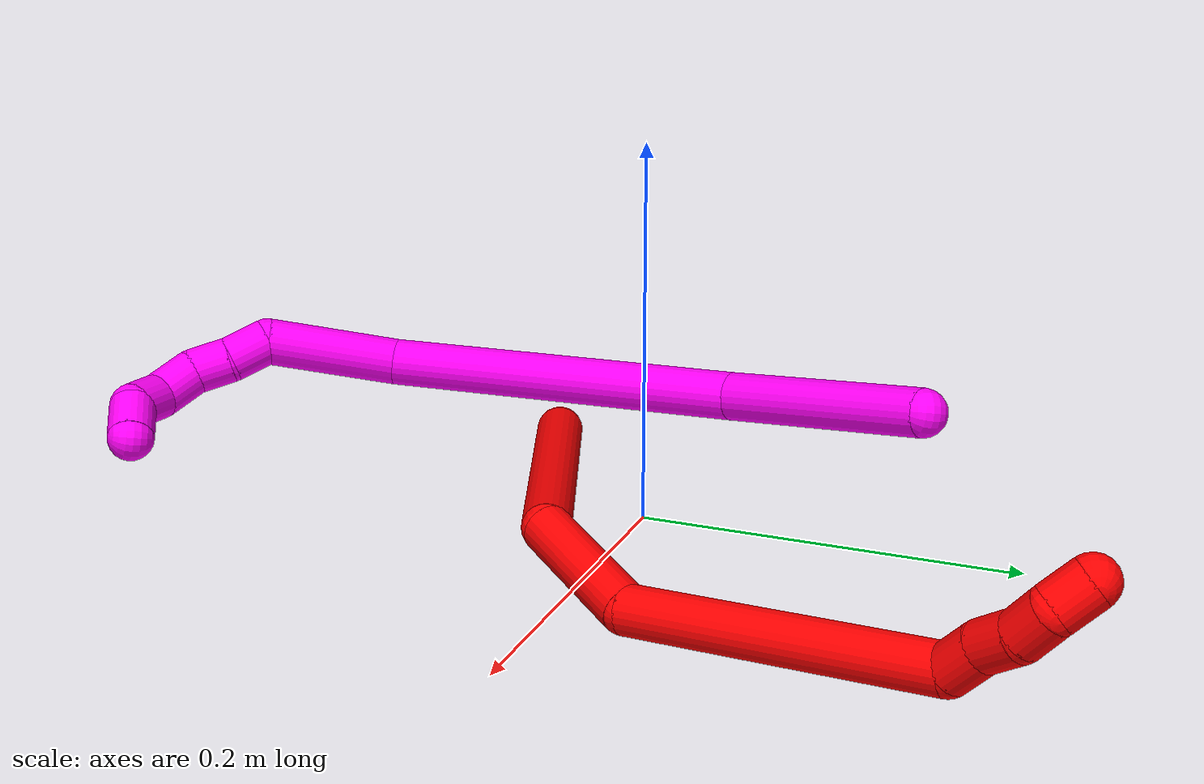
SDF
<sdf version="1.7">
 <world name="default">
  <model name="photoneo_s_sensor">
   <static>1</static>
   <pose>0 0 2 1.57079 1.57079 3.14159</pose>
   <link name="link">
    <inertial><mass>0.1</mass></inertial>
    <sensor name="sensor" type="depth">
     <update_rate>30</update_rate>
     <camera>
      <horizontal_fov>1.22</horizontal_fov>
      <image><width>1920</width><height>1200</height><format>B8G8R8</format></image>
      <clip><near>0.1</near><far>4</far></clip>
      <depth_camera><output>points</output></depth_camera>
     </camera>
     <plugin name="camera_plugin" filename="libgazebo_ros_depth_camera.so">
      <baseline>0.2</baseline>
      <alwaysOn>1</alwaysOn>
      <updateRate>0.0</updateRate>
      <cameraName>camera_ir</cameraName>
      <imageTopicName>/camera/color/image_raw</imageTopicName>
      <cameraInfoTopicName>/camera/color/camera_info</cameraInfoTopicName>
      <depthImageTopicName>/camera/depth/image_raw</depthImageTopicName>
      <depthImageCameraInfoTopicName>/camera/depth/camera_info</depthImageCameraInfoTopicName>
      <pointCloudTopicName>/camera/depth/points</pointCloudTopicName>
      <frameName>fr_optical</frameName>
      <pointCloudCutoff>0.1</pointCloudCutoff>
      <pointCloudCutoffMax>2.0</pointCloudCutoffMax>
      <distortionK1>0</distortionK1>
      <distortionK2>0</distortionK2>
      <distortionK3>0</distortionK3>
      <distortionT1>0</distortionT1>
      <distortionT2>0</distortionT2>
      <CxPrime>0</CxPrime>
      <Cx>0</Cx>
      <Cy>0</Cy>
      <focalLength>0</focalLength>
      <hackBaseline>0</hackBaseline>
     </plugin>
    </sensor>
   </link>
  </model>
  <model name="bin">
   <static>1</static>
   <link name="bottom">
    <collision name="collision-bottom">
     <pose>0 0 -0.01 0 -0 0</pose>
     <geometry><box><size>0.8 0.6 0.02</size></box></geometry>
     <surface>
      <friction><ode><mu>100</mu><mu2>100</mu2></ode></friction>
      <contact><collide_bitmask>65535</collide_bitmask></contact>
     </surface>
    </collision>
   </link>
   <link name="west_wall">
    <collision name="collision-west_wall">
     <pose>-0.41 0 0.1 0 -0 0</pose>
     <geometry><box><size>0.02 0.6 0.2</size></box></geometry>
     <surface>
      <friction><ode><mu>100</mu><mu2>100</mu2></ode></friction>
      <contact><collide_bitmask>65535</collide_bitmask></contact>
     </surface>
    </collision>
   </link>
   <link name="east_wall">
    <collision name="collision-east_wall">
     <pose>0.41 0 0.1 0 -0 0</pose>
     <geometry><box><size>0.02 0.6 0.2</size></box></geometry>
     <surface>
      <friction><ode><mu>100</mu><mu2>100</mu2></ode></friction>
      <contact><collide_bitmask>65535</collide_bitmask></contact>
     </surface>
    </collision>
   </link>
   <link name="south_wall">
    <collision name="collision-south_wall">
     <pose>0 -0.31 0.1 0 -0 0</pose>
     <geometry><box><size>0.8 0.02 0.2</size></box></geometry>
     <surface>
      <friction><ode><mu>100</mu><mu2>100</mu2></ode></friction>
      <contact><collide_bitmask>65535</collide_bitmask></contact>
     </surface>
    </collision>
   </link>
   <link name="north_wall">
    <collision name="collision-north_wall">
     <pose>0 0.31 0.1 0 -0 0</pose>
     <geometry><box><size>0.8 0.02 0.2</size></box></geometry>
     <surface>
      <friction><ode><mu>100</mu><mu2>100</mu2></ode></friction>
      <contact><collide_bitmask>65535</collide_bitmask></contact>
     </surface>
    </collision>
   </link>
  </model>
  <model name="2">
   <static>0</static>
   <link name="2">
    <collision name="collision-cylinder-e_1_1_4">
     <pose>0.005272 -0.011925 -0.087458 3.00608 0.059652 0.828425</pose>
     <geometry><cylinder><radius>0.0125</radius><length>0.176849</length></cylinder></geometry>
     <surface>
      <friction><ode><mu>1.16</mu><mu2>1.16</mu2><slip1>0</slip1><slip2>0</slip2></ode></friction>
      <contact><ode><kp>1e+06</kp><kd>1</kd><max_vel>0</max_vel><min_depth>0.001</min_depth></ode></contact>
     </surface>
    </collision>
    <visual name="visual-cylinder-e_1_1_4">
     <pose>0.005272 -0.011925 -0.087458 3.00608 0.059652 0.828425</pose>
     <geometry><cylinder><radius>0.0125</radius><length>0.176849</length></cylinder></geometry>
     <material><ambient>1 0 0 1</ambient></material>
    </visual>
    <collision name="collision-cylinder-e_2_4_5">
     <pose>0.017748 -0.006672 -0.207553 -2.65711 0.192927 -0.746506</pose>
     <geometry><cylinder><radius>0.0125</radius><length>0.075157</length></cylinder></geometry>
     <surface>
      <friction><ode><mu>1.16</mu><mu2>1.16</mu2><slip1>0</slip1><slip2>0</slip2></ode></friction>
      <contact><ode><kp>1e+06</kp><kd>1</kd><max_vel>0</max_vel><min_depth>0.001</min_depth></ode></contact>
     </surface>
    </collision>
    <visual name="visual-cylinder-e_2_4_5">
     <pose>0.017748 -0.006672 -0.207553 -2.65711 0.192927 -0.746506</pose>
     <geometry><cylinder><radius>0.0125</radius><length>0.075157</length></cylinder></geometry>
     <material><ambient>1 0 0 1</ambient></material>
    </visual>
    <collision name="collision-cylinder-e_3_5_6">
     <pose>0.074787 0.055445 -0.286913 -2.37565 0.655372 -1.40178</pose>
     <geometry><cylinder><radius>0.0125</radius><length>0.163536</length></cylinder></geometry>
     <surface>
      <friction><ode><mu>1.16</mu><mu2>1.16</mu2><slip1>0</slip1><slip2>0</slip2></ode></friction>
      <contact><ode><kp>1e+06</kp><kd>1</kd><max_vel>0</max_vel><min_depth>0.001</min_depth></ode></contact>
     </surface>
    </collision>
    <visual name="visual-cylinder-e_3_5_6">
     <pose>0.074787 0.055445 -0.286913 -2.37565 0.655372 -1.40178</pose>
     <geometry><cylinder><radius>0.0125</radius><length>0.163536</length></cylinder></geometry>
     <material><ambient>1 0 0 1</ambient></material>
    </visual>
    <collision name="collision-cylinder-e_4_6_7">
     <pose>0.134712 0.099808 -0.338112 3.01357 1.15025 2.94447</pose>
     <geometry><cylinder><radius>0.0125</radius><length>0.022109</length></cylinder></geometry>
     <surface>
      <friction><ode><mu>1.16</mu><mu2>1.16</mu2><slip1>0</slip1><slip2>0</slip2></ode></friction>
      <contact><ode><kp>1e+06</kp><kd>1</kd><max_vel>0</max_vel><min_depth>0.001</min_depth></ode></contact>
     </surface>
    </collision>
    <visual name="visual-cylinder-e_4_6_7">
     <pose>0.134712 0.099808 -0.338112 3.01357 1.15025 2.94447</pose>
     <geometry><cylinder><radius>0.0125</radius><length>0.022109</length></cylinder></geometry>
     <material><ambient>1 0 0 1</ambient></material>
    </visual>
    <collision name="collision-cylinder-e_5_7_8">
     <pose>0.153432 0.100011 -0.349155 -3.02353 0.916863 -2.90321</pose>
     <geometry><cylinder><radius>0.0125</radius><length>0.021743</length></cylinder></geometry>
     <surface>
      <friction><ode><mu>1.16</mu><mu2>1.16</mu2><slip1>0</slip1><slip2>0</slip2></ode></friction>
      <contact><ode><kp>1e+06</kp><kd>1</kd><max_vel>0</max_vel><min_depth>0.001</min_depth></ode></contact>
     </surface>
    </collision>
    <visual name="visual-cylinder-e_5_7_8">
     <pose>0.153432 0.100011 -0.349155 -3.02353 0.916863 -2.90321</pose>
     <geometry><cylinder><radius>0.0125</radius><length>0.021743</length></cylinder></geometry>
     <material><ambient>1 0 0 1</ambient></material>
    </visual>
    <collision name="collision-cylinder-e_6_8_9">
     <pose>0.171592 0.09986 -0.359514 2.90105 1.18199 2.78519</pose>
     <geometry><cylinder><radius>0.0125</radius><length>0.0206</length></cylinder></geometry>
     <surface>
      <friction><ode><mu>1.16</mu><mu2>1.16</mu2><slip1>0</slip1><slip2>0</slip2></ode></friction>
      <contact><ode><kp>1e+06</kp><kd>1</kd><max_vel>0</max_vel><min_depth>0.001</min_depth></ode></contact>
     </surface>
    </collision>
    <visual name="visual-cylinder-e_6_8_9">
     <pose>0.171592 0.09986 -0.359514 2.90105 1.18199 2.78519</pose>
     <geometry><cylinder><radius>0.0125</radius><length>0.0206</length></cylinder></geometry>
     <material><ambient>1 0 0 1</ambient></material>
    </visual>
    <collision name="collision-cylinder-e_7_9_2">
     <pose>0.190834 0.101162 -0.362426 -1.19504 1.32856 -0.979119</pose>
     <geometry><cylinder><radius>0.0125</radius><length>0.020006</length></cylinder></geometry>
     <surface>
      <friction><ode><mu>1.16</mu><mu2>1.16</mu2><slip1>0</slip1><slip2>0</slip2></ode></friction>
      <contact><ode><kp>1e+06</kp><kd>1</kd><max_vel>0</max_vel><min_depth>0.001</min_depth></ode></contact>
     </surface>
    </collision>
    <visual name="visual-cylinder-e_7_9_2">
     <pose>0.190834 0.101162 -0.362426 -1.19504 1.32856 -0.979119</pose>
     <geometry><cylinder><radius>0.0125</radius><length>0.020006</length></cylinder></geometry>
     <material><ambient>1 0 0 1</ambient></material>
    </visual>
    <collision name="collision-sphere-2">
     <pose>0.200545 0.103394 -0.361545 0 -0 0</pose>
     <geometry><sphere><radius>0.0125</radius></sphere></geometry>
     <surface>
      <friction><ode><mu>1.16</mu><mu2>1.16</mu2><slip1>0</slip1><slip2>0</slip2></ode></friction>
      <contact><ode><kp>1e+06</kp><kd>1</kd><max_vel>0</max_vel><min_depth>0.001</min_depth></ode></contact>
     </surface>
    </collision>
    <visual name="visual-sphere-2">
     <pose>0.200545 0.103394 -0.361545 0 -0 0</pose>
     <geometry><sphere><radius>0.0125</radius></sphere></geometry>
     <material><ambient>1 0 0 1</ambient></material>
    </visual>
    <collision name="collision-sphere-9">
     <pose>0.181123 0.09893 -0.363307 0 -0 0</pose>
     <geometry><sphere><radius>0.0125</radius></sphere></geometry>
     <surface>
      <friction><ode><mu>1.16</mu><mu2>1.16</mu2><slip1>0</slip1><slip2>0</slip2></ode></friction>
      <contact><ode><kp>1e+06</kp><kd>1</kd><max_vel>0</max_vel><min_depth>0.001</min_depth></ode></contact>
     </surface>
    </collision>
    <visual name="visual-sphere-9">
     <pose>0.181123 0.09893 -0.363307 0 -0 0</pose>
     <geometry><sphere><radius>0.0125</radius></sphere></geometry>
     <material><ambient>1 0 0 1</ambient></material>
    </visual>
    <collision name="collision-sphere-4">
     <pose>0.010543 -0.02385 -0.174916 0 -0 0</pose>
     <geometry><sphere><radius>0.0125</radius></sphere></geometry>
     <surface>
      <friction><ode><mu>1.16</mu><mu2>1.16</mu2><slip1>0</slip1><slip2>0</slip2></ode></friction>
      <contact><ode><kp>1e+06</kp><kd>1</kd><max_vel>0</max_vel><min_depth>0.001</min_depth></ode></contact>
     </surface>
    </collision>
    <visual name="visual-sphere-4">
     <pose>0.010543 -0.02385 -0.174916 0 -0 0</pose>
     <geometry><sphere><radius>0.0125</radius></sphere></geometry>
     <material><ambient>1 0 0 1</ambient></material>
    </visual>
    <collision name="collision-sphere-1">
     <geometry><sphere><radius>0.0125</radius></sphere></geometry>
     <surface>
      <friction><ode><mu>1.16</mu><mu2>1.16</mu2><slip1>0</slip1><slip2>0</slip2></ode></friction>
      <contact><ode><kp>1e+06</kp><kd>1</kd><max_vel>0</max_vel><min_depth>0.001</min_depth></ode></contact>
     </surface>
    </collision>
    <visual name="visual-sphere-1">
     <geometry><sphere><radius>0.0125</radius></sphere></geometry>
     <material><ambient>1 0 0 1</ambient></material>
    </visual>
    <collision name="collision-sphere-8">
     <pose>0.162061 0.10079 -0.355722 0 -0 0</pose>
     <geometry><sphere><radius>0.0125</radius></sphere></geometry>
     <surface>
      <friction><ode><mu>1.16</mu><mu2>1.16</mu2><slip1>0</slip1><slip2>0</slip2></ode></friction>
      <contact><ode><kp>1e+06</kp><kd>1</kd><max_vel>0</max_vel><min_depth>0.001</min_depth></ode></contact>
     </surface>
    </collision>
    <visual name="visual-sphere-8">
     <pose>0.162061 0.10079 -0.355722 0 -0 0</pose>
     <geometry><sphere><radius>0.0125</radius></sphere></geometry>
     <material><ambient>1 0 0 1</ambient></material>
    </visual>
    <collision name="collision-sphere-5">
     <pose>0.024953 0.010505 -0.24019 0 -0 0</pose>
     <geometry><sphere><radius>0.0125</radius></sphere></geometry>
     <surface>
      <friction><ode><mu>1.16</mu><mu2>1.16</mu2><slip1>0</slip1><slip2>0</slip2></ode></friction>
      <contact><ode><kp>1e+06</kp><kd>1</kd><max_vel>0</max_vel><min_depth>0.001</min_depth></ode></contact>
     </surface>
    </collision>
    <visual name="visual-sphere-5">
     <pose>0.024953 0.010505 -0.24019 0 -0 0</pose>
     <geometry><sphere><radius>0.0125</radius></sphere></geometry>
     <material><ambient>1 0 0 1</ambient></material>
    </visual>
    <collision name="collision-sphere-6">
     <pose>0.124621 0.100384 -0.333635 0 -0 0</pose>
     <geometry><sphere><radius>0.0125</radius></sphere></geometry>
     <surface>
      <friction><ode><mu>1.16</mu><mu2>1.16</mu2><slip1>0</slip1><slip2>0</slip2></ode></friction>
      <contact><ode><kp>1e+06</kp><kd>1</kd><max_vel>0</max_vel><min_depth>0.001</min_depth></ode></contact>
     </surface>
    </collision>
    <visual name="visual-sphere-6">
     <pose>0.124621 0.100384 -0.333635 0 -0 0</pose>
     <geometry><sphere><radius>0.0125</radius></sphere></geometry>
     <material><ambient>1 0 0 1</ambient></material>
    </visual>
    <collision name="collision-sphere-7">
     <pose>0.144803 0.099232 -0.342588 0 -0 0</pose>
     <geometry><sphere><radius>0.0125</radius></sphere></geometry>
     <surface>
      <friction><ode><mu>1.16</mu><mu2>1.16</mu2><slip1>0</slip1><slip2>0</slip2></ode></friction>
      <contact><ode><kp>1e+06</kp><kd>1</kd><max_vel>0</max_vel><min_depth>0.001</min_depth></ode></contact>
     </surface>
    </collision>
    <visual name="visual-sphere-7">
     <pose>0.144803 0.099232 -0.342588 0 -0 0</pose>
     <geometry><sphere><radius>0.0125</radius></sphere></geometry>
     <material><ambient>1 0 0 1</ambient></material>
    </visual>
    <inertial>
     <pose>0.056327 0.029838 -0.21542 0 -0 0</pose>
     <mass>0.5</mass>
     <inertia>
      <ixx>0.000435</ixx>
      <ixy>0</ixy>
      <ixz>0</ixz>
      <iyy>-0.000181</iyy>
      <iyz>0</iyz>
      <izz>-0.000454</izz>
     </inertia>
    </inertial>
   </link>
   <pose>-0.075734 -0.077548 0.012379 -1.48676 -0.864641 1.91791</pose>
  </model>
  <model name="10">
   <static>0</static>
   <link name="10">
    <collision name="collision-cylinder-e_1_1_4">
     <pose>0.014754 -0.046696 0.030594 0.990796 0.258379 0.140165</pose>
     <geometry><cylinder><radius>0.0125</radius><length>0.115484</length></cylinder></geometry>
     <surface>
      <friction><ode><mu>1.16</mu><mu2>1.16</mu2><slip1>0</slip1><slip2>0</slip2></ode></friction>
      <contact><ode><kp>1e+06</kp><kd>1</kd><max_vel>0</max_vel><min_depth>0.001</min_depth></ode></contact>
     </surface>
    </collision>
    <visual name="visual-cylinder-e_1_1_4">
     <pose>0.014754 -0.046696 0.030594 0.990796 0.258379 0.140165</pose>
     <geometry><cylinder><radius>0.0125</radius><length>0.115484</length></cylinder></geometry>
     <material><ambient>1 0 0.964706 1</ambient></material>
    </visual>
    <collision name="collision-cylinder-e_2_4_5">
     <pose>0.048337 -0.157789 0.134435 0.721194 0.190718 0.072104</pose>
     <geometry><cylinder><radius>0.0125</radius><length>0.198664</length></cylinder></geometry>
     <surface>
      <friction><ode><mu>1.16</mu><mu2>1.16</mu2><slip1>0</slip1><slip2>0</slip2></ode></friction>
      <contact><ode><kp>1e+06</kp><kd>1</kd><max_vel>0</max_vel><min_depth>0.001</min_depth></ode></contact>
     </surface>
    </collision>
    <visual name="visual-cylinder-e_2_4_5">
     <pose>0.048337 -0.157789 0.134435 0.721194 0.190718 0.072104</pose>
     <geometry><cylinder><radius>0.0125</radius><length>0.198664</length></cylinder></geometry>
     <material><ambient>1 0 0.964706 1</ambient></material>
    </visual>
    <collision name="collision-cylinder-e_3_5_6">
     <pose>0.066175 -0.227458 0.243276 0.14701 -0.027563 -0.00203</pose>
     <geometry><cylinder><radius>0.0125</radius><length>0.071992</length></cylinder></geometry>
     <surface>
      <friction><ode><mu>1.16</mu><mu2>1.16</mu2><slip1>0</slip1><slip2>0</slip2></ode></friction>
      <contact><ode><kp>1e+06</kp><kd>1</kd><max_vel>0</max_vel><min_depth>0.001</min_depth></ode></contact>
     </surface>
    </collision>
    <visual name="visual-cylinder-e_3_5_6">
     <pose>0.066175 -0.227458 0.243276 0.14701 -0.027563 -0.00203</pose>
     <geometry><cylinder><radius>0.0125</radius><length>0.071992</length></cylinder></geometry>
     <material><ambient>1 0 0.964706 1</ambient></material>
    </visual>
    <collision name="collision-cylinder-e_4_6_7">
     <pose>0.071094 -0.231878 0.288372 -0.089316 0.554725 -0.025444</pose>
     <geometry><cylinder><radius>0.0125</radius><length>0.022446</length></cylinder></geometry>
     <surface>
      <friction><ode><mu>1.16</mu><mu2>1.16</mu2><slip1>0</slip1><slip2>0</slip2></ode></friction>
      <contact><ode><kp>1e+06</kp><kd>1</kd><max_vel>0</max_vel><min_depth>0.001</min_depth></ode></contact>
     </surface>
    </collision>
    <visual name="visual-cylinder-e_4_6_7">
     <pose>0.071094 -0.231878 0.288372 -0.089316 0.554725 -0.025444</pose>
     <geometry><cylinder><radius>0.0125</radius><length>0.022446</length></cylinder></geometry>
     <material><ambient>1 0 0.964706 1</ambient></material>
    </visual>
    <collision name="collision-cylinder-e_5_7_8">
     <pose>0.081636 -0.231963 0.307284 0.099125 0.455333 0.022984</pose>
     <geometry><cylinder><radius>0.0125</radius><length>0.021058</length></cylinder></geometry>
     <surface>
      <friction><ode><mu>1.16</mu><mu2>1.16</mu2><slip1>0</slip1><slip2>0</slip2></ode></friction>
      <contact><ode><kp>1e+06</kp><kd>1</kd><max_vel>0</max_vel><min_depth>0.001</min_depth></ode></contact>
     </surface>
    </collision>
    <visual name="visual-cylinder-e_5_7_8">
     <pose>0.081636 -0.231963 0.307284 0.099125 0.455333 0.022984</pose>
     <geometry><cylinder><radius>0.0125</radius><length>0.021058</length></cylinder></geometry>
     <material><ambient>1 0 0.964706 1</ambient></material>
    </visual>
    <collision name="collision-cylinder-e_6_8_9">
     <pose>0.092514 -0.228325 0.325866 -0.462506 0.547458 -0.132034</pose>
     <geometry><cylinder><radius>0.0125</radius><length>0.024007</length></cylinder></geometry>
     <surface>
      <friction><ode><mu>1.16</mu><mu2>1.16</mu2><slip1>0</slip1><slip2>0</slip2></ode></friction>
      <contact><ode><kp>1e+06</kp><kd>1</kd><max_vel>0</max_vel><min_depth>0.001</min_depth></ode></contact>
     </surface>
    </collision>
    <visual name="visual-cylinder-e_6_8_9">
     <pose>0.092514 -0.228325 0.325866 -0.462506 0.547458 -0.132034</pose>
     <geometry><cylinder><radius>0.0125</radius><length>0.024007</length></cylinder></geometry>
     <material><ambient>1 0 0.964706 1</ambient></material>
    </visual>
    <collision name="collision-cylinder-e_7_9_10">
     <pose>0.099418 -0.215445 0.342859 -0.815513 0.057443 -0.024819</pose>
     <geometry><cylinder><radius>0.0125</radius><length>0.022856</length></cylinder></geometry>
     <surface>
      <friction><ode><mu>1.16</mu><mu2>1.16</mu2><slip1>0</slip1><slip2>0</slip2></ode></friction>
      <contact><ode><kp>1e+06</kp><kd>1</kd><max_vel>0</max_vel><min_depth>0.001</min_depth></ode></contact>
     </surface>
    </collision>
    <visual name="visual-cylinder-e_7_9_10">
     <pose>0.099418 -0.215445 0.342859 -0.815513 0.057443 -0.024819</pose>
     <geometry><cylinder><radius>0.0125</radius><length>0.022856</length></cylinder></geometry>
     <material><ambient>1 0 0.964706 1</ambient></material>
    </visual>
    <collision name="collision-cylinder-e_8_10_2">
     <pose>0.105085 -0.196564 0.351713 -1.47341 0.440653 -0.40084</pose>
     <geometry><cylinder><radius>0.0125</radius><length>0.023494</length></cylinder></geometry>
     <surface>
      <friction><ode><mu>1.16</mu><mu2>1.16</mu2><slip1>0</slip1><slip2>0</slip2></ode></friction>
      <contact><ode><kp>1e+06</kp><kd>1</kd><max_vel>0</max_vel><min_depth>0.001</min_depth></ode></contact>
     </surface>
    </collision>
    <visual name="visual-cylinder-e_8_10_2">
     <pose>0.105085 -0.196564 0.351713 -1.47341 0.440653 -0.40084</pose>
     <geometry><cylinder><radius>0.0125</radius><length>0.023494</length></cylinder></geometry>
     <material><ambient>1 0 0.964706 1</ambient></material>
    </visual>
    <collision name="collision-sphere-2">
     <pose>0.110095 -0.18599 0.352747 0 -0 0</pose>
     <geometry><sphere><radius>0.0125</radius></sphere></geometry>
     <surface>
      <friction><ode><mu>1.16</mu><mu2>1.16</mu2><slip1>0</slip1><slip2>0</slip2></ode></friction>
      <contact><ode><kp>1e+06</kp><kd>1</kd><max_vel>0</max_vel><min_depth>0.001</min_depth></ode></contact>
     </surface>
    </collision>
    <visual name="visual-sphere-2">
     <pose>0.110095 -0.18599 0.352747 0 -0 0</pose>
     <geometry><sphere><radius>0.0125</radius></sphere></geometry>
     <material><ambient>1 0 0.964706 1</ambient></material>
    </visual>
    <collision name="collision-sphere-10">
     <pose>0.100074 -0.207139 0.35068 0 -0 0</pose>
     <geometry><sphere><radius>0.0125</radius></sphere></geometry>
     <surface>
      <friction><ode><mu>1.16</mu><mu2>1.16</mu2><slip1>0</slip1><slip2>0</slip2></ode></friction>
      <contact><ode><kp>1e+06</kp><kd>1</kd><max_vel>0</max_vel><min_depth>0.001</min_depth></ode></contact>
     </surface>
    </collision>
    <visual name="visual-sphere-10">
     <pose>0.100074 -0.207139 0.35068 0 -0 0</pose>
     <geometry><sphere><radius>0.0125</radius></sphere></geometry>
     <material><ambient>1 0 0.964706 1</ambient></material>
    </visual>
    <collision name="collision-sphere-9">
     <pose>0.098762 -0.223752 0.335038 0 -0 0</pose>
     <geometry><sphere><radius>0.0125</radius></sphere></geometry>
     <surface>
      <friction><ode><mu>1.16</mu><mu2>1.16</mu2><slip1>0</slip1><slip2>0</slip2></ode></friction>
      <contact><ode><kp>1e+06</kp><kd>1</kd><max_vel>0</max_vel><min_depth>0.001</min_depth></ode></contact>
     </surface>
    </collision>
    <visual name="visual-sphere-9">
     <pose>0.098762 -0.223752 0.335038 0 -0 0</pose>
     <geometry><sphere><radius>0.0125</radius></sphere></geometry>
     <material><ambient>1 0 0.964706 1</ambient></material>
    </visual>
    <collision name="collision-sphere-4">
     <pose>0.029508 -0.093391 0.061187 0 -0 0</pose>
     <geometry><sphere><radius>0.0125</radius></sphere></geometry>
     <surface>
      <friction><ode><mu>1.16</mu><mu2>1.16</mu2><slip1>0</slip1><slip2>0</slip2></ode></friction>
      <contact><ode><kp>1e+06</kp><kd>1</kd><max_vel>0</max_vel><min_depth>0.001</min_depth></ode></contact>
     </surface>
    </collision>
    <visual name="visual-sphere-4">
     <pose>0.029508 -0.093391 0.061187 0 -0 0</pose>
     <geometry><sphere><radius>0.0125</radius></sphere></geometry>
     <material><ambient>1 0 0.964706 1</ambient></material>
    </visual>
    <collision name="collision-sphere-1">
     <geometry><sphere><radius>0.0125</radius></sphere></geometry>
     <surface>
      <friction><ode><mu>1.16</mu><mu2>1.16</mu2><slip1>0</slip1><slip2>0</slip2></ode></friction>
      <contact><ode><kp>1e+06</kp><kd>1</kd><max_vel>0</max_vel><min_depth>0.001</min_depth></ode></contact>
     </surface>
    </collision>
    <visual name="visual-sphere-1">
     <geometry><sphere><radius>0.0125</radius></sphere></geometry>
     <material><ambient>1 0 0.964706 1</ambient></material>
    </visual>
    <collision name="collision-sphere-8">
     <pose>0.086266 -0.232898 0.316694 0 -0 0</pose>
     <geometry><sphere><radius>0.0125</radius></sphere></geometry>
     <surface>
      <friction><ode><mu>1.16</mu><mu2>1.16</mu2><slip1>0</slip1><slip2>0</slip2></ode></friction>
      <contact><ode><kp>1e+06</kp><kd>1</kd><max_vel>0</max_vel><min_depth>0.001</min_depth></ode></contact>
     </surface>
    </collision>
    <visual name="visual-sphere-8">
     <pose>0.086266 -0.232898 0.316694 0 -0 0</pose>
     <geometry><sphere><radius>0.0125</radius></sphere></geometry>
     <material><ambient>1 0 0.964706 1</ambient></material>
    </visual>
    <collision name="collision-sphere-5">
     <pose>0.067167 -0.222187 0.207682 0 -0 0</pose>
     <geometry><sphere><radius>0.0125</radius></sphere></geometry>
     <surface>
      <friction><ode><mu>1.16</mu><mu2>1.16</mu2><slip1>0</slip1><slip2>0</slip2></ode></friction>
      <contact><ode><kp>1e+06</kp><kd>1</kd><max_vel>0</max_vel><min_depth>0.001</min_depth></ode></contact>
     </surface>
    </collision>
    <visual name="visual-sphere-5">
     <pose>0.067167 -0.222187 0.207682 0 -0 0</pose>
     <geometry><sphere><radius>0.0125</radius></sphere></geometry>
     <material><ambient>1 0 0.964706 1</ambient></material>
    </visual>
    <collision name="collision-sphere-6">
     <pose>0.065183 -0.232729 0.27887 0 -0 0</pose>
     <geometry><sphere><radius>0.0125</radius></sphere></geometry>
     <surface>
      <friction><ode><mu>1.16</mu><mu2>1.16</mu2><slip1>0</slip1><slip2>0</slip2></ode></friction>
      <contact><ode><kp>1e+06</kp><kd>1</kd><max_vel>0</max_vel><min_depth>0.001</min_depth></ode></contact>
     </surface>
    </collision>
    <visual name="visual-sphere-6">
     <pose>0.065183 -0.232729 0.27887 0 -0 0</pose>
     <geometry><sphere><radius>0.0125</radius></sphere></geometry>
     <material><ambient>1 0 0.964706 1</ambient></material>
    </visual>
    <collision name="collision-sphere-7">
     <pose>0.077006 -0.231027 0.297874 0 -0 0</pose>
     <geometry><sphere><radius>0.0125</radius></sphere></geometry>
     <surface>
      <friction><ode><mu>1.16</mu><mu2>1.16</mu2><slip1>0</slip1><slip2>0</slip2></ode></friction>
      <contact><ode><kp>1e+06</kp><kd>1</kd><max_vel>0</max_vel><min_depth>0.001</min_depth></ode></contact>
     </surface>
    </collision>
    <visual name="visual-sphere-7">
     <pose>0.077006 -0.231027 0.297874 0 -0 0</pose>
     <geometry><sphere><radius>0.0125</radius></sphere></geometry>
     <material><ambient>1 0 0.964706 1</ambient></material>
    </visual>
    <inertial>
     <pose>0.052696 -0.156455 0.169241 0 -0 0</pose>
     <mass>0.5</mass>
     <inertia>
      <ixx>0.000889</ixx>
      <ixy>0</ixy>
      <ixz>0</ixz>
      <iyy>0.000667</iyy>
      <iyz>0</iyz>
      <izz>0.000403</izz>
     </inertia>
    </inertial>
   </link>
   <pose>0.003633 0.146115 0.078564 -0.06178 1.3885 -0.977358</pose>
  </model>
 </world>
</sdf>
